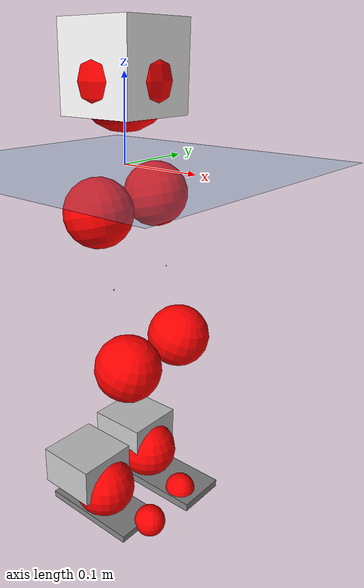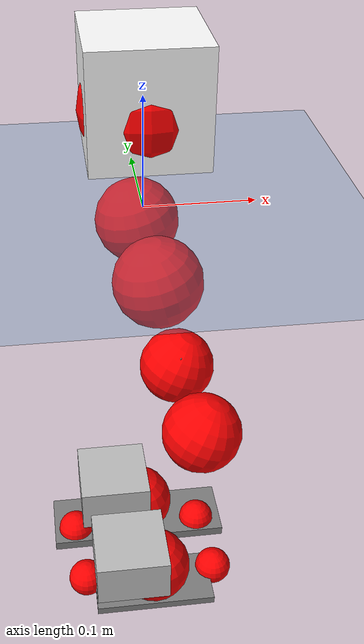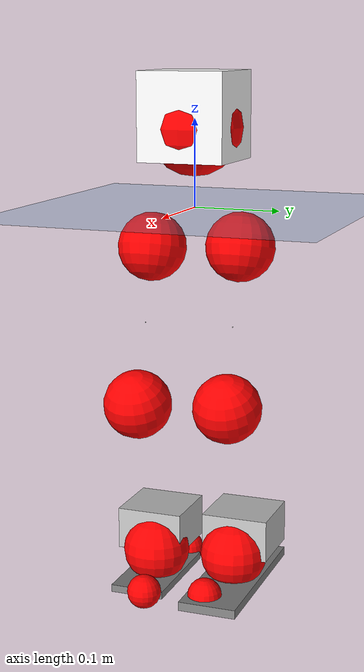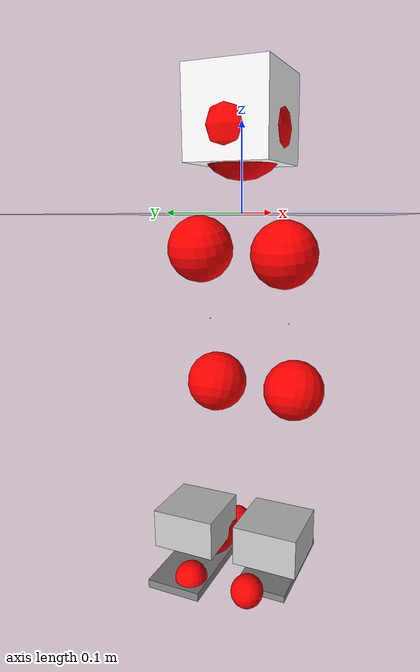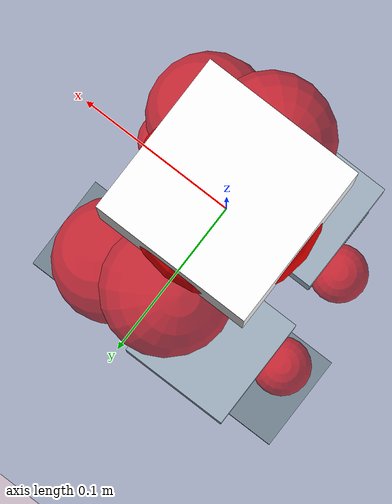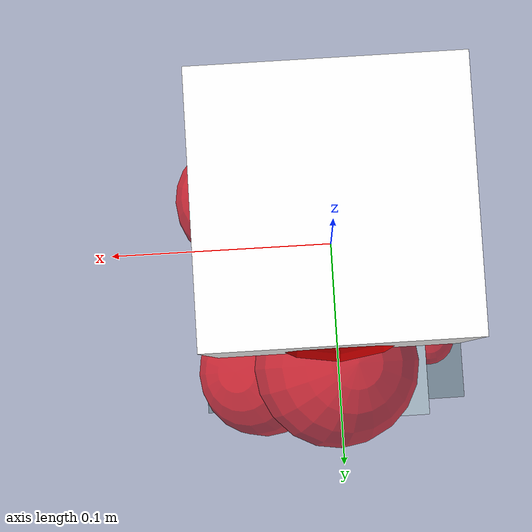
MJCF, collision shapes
<mujoco model="pi_12dof_release_v1">
  <compiler angle="radian" assetdir="assets" balanceinertia="true" inertiafromgeom="false"/>

  <option timestep="0.005" density="1.2" viscosity="2e-05"/>

  <size nkey="1"/>

  <visual>
    <quality shadowsize="8192"/>
    <map shadowclip="0.5"/>
  </visual>

  <default>
    <default class="/">
      <joint armature="0.01" damping="0.01" frictionloss="0.01"/>
      <geom contype="0" conaffinity="0" group="1" solref="-1000 -80"/>
      <site size="0.01 0.005 0.005" group="5"/>
      <general forcelimited="true" biastype="affine" gainprm="20" biasprm="0 -20 -0.5"/>
      <default class="foot">
        <geom size="0.0845 0.036 0.005" type="box" condim="6" group="4" priority="1" friction="0.9 0.2 0.2" solimp="0.015 1 0.005"/>
      </default>
      <default class="reward_collision_sphere">
        <geom group="5" rgba="1 0 0 1"/>
      </default>
    </default>
  </default>

  <asset>
    <texture type="skybox" colorspace="auto" name="//unnamed_texture_0" builtin="gradient" rgb1="0.95 0.95 0.95" rgb2="0.95 0.95 0.95" width="100" height="600"/>
    <texture type="2d" colorspace="auto" name="texplane" builtin="checker" rgb1="0.345 0.575 0.748" rgb2="0.345 0.575 0.748" markrgb="1 1 1" width="512" height="512"/>
    <material name="MatPlane" class="/" texture="texplane" texuniform="true" texrepeat="2 2" specular="0.9"/>
    <mesh name="baselink_1" class="/" file="baselink_1.STL"/>
    <mesh name="r_hip_pitch_link" class="/" file="r_hip_pitch_link.STL"/>
    <mesh name="r_hip_roll_link" class="/" file="r_hip_roll_link.STL"/>
    <mesh name="r_thigh_link" class="/" file="r_thigh_link.STL"/>
    <mesh name="r_calf_link" class="/" file="r_calf_link.STL"/>
    <mesh name="r_ankle_pitch_link" class="/" file="r_ankle_pitch_link.STL"/>
    <mesh name="r_ankle_roll_link" class="/" file="r_ankle_roll_link.STL"/>
    <mesh name="l_hip_pitch_link" class="/" file="l_hip_pitch_link.STL"/>
    <mesh name="l_hip_roll_link" class="/" file="l_hip_roll_link.STL"/>
    <mesh name="l_thigh_link" class="/" file="l_thigh_link.STL"/>
    <mesh name="l_calf_link" class="/" file="l_calf_link.STL"/>
    <mesh name="l_ankle_pitch_link" class="/" file="l_ankle_pitch_link.STL"/>
    <mesh name="l_ankle_roll_link" class="/" file="l_ankle_roll_link.STL"/>
  </asset>

  <worldbody>
    <geom name="floor" class="/" size="100 100 0.125" type="plane" group="0" material="MatPlane"/>
    <light name="toplight_shadow" class="/" pos="0 0 5" dir="0.0990148 0.0990148 -0.990148" type="directional" ambient="0.04 0.04 0.04" diffuse="0.55 0.55 0.55" specular="0.12 0.12 0.12"/>
    <light name="toplight_fill" class="/" pos="0 0 5" dir="0.0990148 0.0990148 -0.990148" type="directional" castshadow="false" ambient="0.04 0.04 0.04" diffuse="0.3 0.3 0.3" specular="0.08 0.08 0.08"/>
    <body name="trunk" pos="0.000509652 -0.000208492 -0.00111913" quat="1 0.0002093 -0.00031891 0.000254528">
      <inertial pos="0.00227752 0.000586374 0.0554834" quat="0.687192 0.00958089 0.0169823 0.726214" mass="2.18883" diaginertia="0.0140368 0.00078153 0.0156267"/>
      <joint name="//unnamed_joint_0" type="free"/>
      <geom name="//unnamed_geom_1" class="/" type="mesh" density="0" rgba="1 1 1 1" mesh="baselink_1"/>
      <geom name="//unnamed_geom_2" class="/" size="0.0498847 0.0498847 0.0498847" pos="0 0 0.104653" type="box" rgba="1 1 1 1"/>
      <geom name="//unnamed_geom_3" class="reward_collision_sphere" size="0.0548732" pos="0 0 0.0915717"/>
      <site name="imu" class="/" pos="0.0127814 -0.00680981 -0.00386836" size="0.00997694"/>
      <camera name="track" class="/" pos="0 -1.22836 0" quat="0.707107 0.707107 0 0" mode="trackcom"/>
      <camera name="ego_camera" class="/" pos="0.0803051 0 0.23547" quat="-0.5 -0.5 0.5 0.5"/>
      <body name="r_hip_pitch_link" pos="0.00353906 -0.0160286 -0.0442605" quat="0.992207 0.000240866 -0.124595 -0.00108197">
        <inertial pos="6.10001e-05 -0.0369305 0.000130254" quat="-0.0137398 0.711282 -0.0272201 0.702245" mass="0.375524" diaginertia="0.000156747 8.72644e-06 0.000331137"/>
        <joint name="r_hip_pitch_joint" class="/" pos="0 0 0" axis="-0.0139716 -0.999902 -3.69992e-05" range="-1.74279 1.28076" armature="0.00869273" damping="0.020284" frictionloss="0.00863418"/>
        <geom name="//unnamed_geom_4" class="/" type="mesh" density="0" rgba="0.75294 0.75294 0.75294 1" mesh="r_hip_pitch_link"/>
        <geom name="//unnamed_geom_5" class="/" size="0.000498847 0.000498847 0.000498847" type="box" rgba="0.75294 0.75294 0.75294 1"/>
        <body name="r_hip_roll_link" pos="0.00231086 -0.033988 -0.00185672" quat="1 0.00025408 -8.62346e-05 -0.000207261">
          <inertial pos="0.00138217 -0.00063075 -0.0808981" quat="0.698086 -0.0819612 -0.0897375 0.705624" mass="0.394224" diaginertia="0.000477665 2.43763e-05 0.000480779"/>
          <joint name="r_hip_roll_joint" class="/" pos="0 0 0" axis="-0.999922 0.0104741 -0.00686746" range="-0.0998716 0.54755" armature="0.00851633" damping="0.00135991" frictionloss="0.0103633"/>
          <geom name="//unnamed_geom_6" class="/" type="mesh" density="0" rgba="0.75294 0.75294 0.75294 1" mesh="r_hip_roll_link"/>
          <geom name="//unnamed_geom_7" class="/" size="0.000498847 0.000498847 0.000498847" type="box" rgba="0.75294 0.75294 0.75294 1"/>
          <geom name="//unnamed_geom_8" class="reward_collision_sphere" size="0.0399078"/>
          <body name="r_thigh_link" pos="0.000268533 -0.000104227 -0.0882903" quat="1 -6.27327e-05 -1.74066e-05 -7.8312e-06">
            <inertial pos="-0.00125255 -0.000288209 -0.0647715" quat="0.741446 0.670926 0.00460197 0.00973031" mass="0.109654" diaginertia="0.000170688 8.29557e-06 0.000209984"/>
            <joint name="r_thigh_joint" class="/" pos="0 0 0" axis="0.0034232 -0.00850102 -0.999958" stiffness="0.00431916" range="-0.249165 0.638267" armature="0.0100036" damping="0.00892555" frictionloss="0.010817"/>
            <geom name="//unnamed_geom_9" class="/" type="mesh" density="0" rgba="0.75294 0.75294 0.75294 1" mesh="r_thigh_link"/>
            <geom name="//unnamed_geom_10" class="/" size="0.000498847 0.000498847 0.000498847" type="box" rgba="0.75294 0.75294 0.75294 1"/>
            <body name="r_calf_link" pos="-0.00100296 -0.00134239 -0.0950686" quat="0.947657 0.000203015 0.319291 0.000317235">
              <inertial pos="-0.00109242 -0.00032338 -0.0914073" quat="0.999953 -0.00395173 0.00274881 0.00844451" mass="0.799575" diaginertia="0.00489747 0.000319914 0.000686451"/>
              <joint name="r_calf_joint" class="/" pos="0 0 0" axis="0.000344029 -0.999997 0.00237258" range="-1.65628 0.689699" armature="0.00932845" damping="0.0142943" frictionloss="0.00880165"/>
              <geom name="//unnamed_geom_11" class="/" type="mesh" density="0" rgba="0.75294 0.75294 0.75294 1" mesh="r_calf_link"/>
              <geom name="//unnamed_geom_12" class="/" size="0.000498847 0.000498847 0.000498847" type="box" rgba="0.75294 0.75294 0.75294 1"/>
              <geom name="//unnamed_geom_13" class="reward_collision_sphere" size="0.0399078"/>
              <body name="r_ankle_pitch_link" pos="-0.00108467 -0.00191792 -0.185485" quat="0.980137 0.000134685 -0.198321 8.40076e-05">
                <inertial pos="0.00490381 0.00386749 -0.000720743" quat="-0.000176344 0.707113 -0.00323148 0.707093" mass="0.177171" diaginertia="0.00043337 1.96382e-05 0.000470046"/>
                <joint name="r_ankle_pitch_joint" class="/" pos="0 0 0" axis="0.0133976 -0.999907 -0.00250677" range="-1.3501 0.544137" armature="0.00889528" damping="0.00965229" frictionloss="0.00998335"/>
                <geom name="//unnamed_geom_14" class="/" type="mesh" density="0" rgba="0.75294 0.75294 0.75294 1" mesh="r_ankle_pitch_link"/>
                <geom name="//unnamed_geom_15" class="/" size="0.0389101 0.0399078 0.0249424" type="box" rgba="0.75294 0.75294 0.75294 1"/>
                <body name="r_ankle_roll_link" pos="0.0804134 0.00478114 0.00150936" quat="1 0.000150667 -0.000171852 6.36965e-05">
                  <inertial pos="-0.0248005 0.000588189 -0.0203674" quat="0.55727 0.424748 0.434206 0.566131" mass="0.502379" diaginertia="0.00162976 8.94719e-05 0.00107672"/>
                  <joint name="r_ankle_roll_joint" class="/" pos="0 0 0" axis="-1 -8.25883e-05 0.000754824" range="-0.179651 0.207043" armature="0.0114079" damping="0.00919784" frictionloss="0.00973394"/>
                  <geom name="//unnamed_geom_16" class="/" type="mesh" density="0" rgba="0.75294 0.75294 0.75294 1" mesh="r_ankle_roll_link"/>
                  <geom name="//unnamed_geom_17" class="/" type="mesh" rgba="0.75294 0.75294 0.75294 1" mesh="r_ankle_roll_link"/>
                  <geom name="right_foot" class="foot" size="0.0648779 0.0322129 0.00434988" pos="-0.0546075 0 -0.0575594"/>
                  <geom name="//unnamed_geom_19" class="reward_collision_sphere" size="0.0399078" pos="-0.0535367 0 -0.0261634"/>
                  <geom name="//unnamed_geom_20" class="reward_collision_sphere" size="0.0199539" pos="0.016061 0.0122836 -0.0523267"/>
                  <geom name="//unnamed_geom_21" class="reward_collision_sphere" size="0.0199539" pos="-0.128488 0.0122836 -0.0523267"/>
                  <site name="right_foot" class="foot" pos="-0.0546075 0 -0.0575594" size="0.00997694"/>
                </body>
              </body>
            </body>
          </body>
        </body>
      </body>
      <body name="l_hip_pitch_link" pos="0.00179426 0.0171951 -0.0407619" quat="0.992313 0.000333782 -0.123755 0.000186503">
        <inertial pos="0.00366594 0.0320182 -0.000694764" quat="-0.0336735 0.705108 0.0224785 0.707943" mass="0.391957" diaginertia="0.000175359 8.98018e-06 0.000391358"/>
        <joint name="l_hip_pitch_joint" class="/" pos="0 0 0" axis="-0.00191407 0.999998 0.000634156" range="-1.22723 1.79966" armature="0.00904834" damping="0.0213683" frictionloss="0.00902735"/>
        <geom name="//unnamed_geom_22" class="/" type="mesh" density="0" rgba="0.75294 0.75294 0.75294 1" mesh="l_hip_pitch_link"/>
        <geom name="//unnamed_geom_23" class="/" size="0.000498847 0.000498847 0.000498847" type="box" rgba="0.75294 0.75294 0.75294 1"/>
        <body name="l_hip_roll_link" pos="-0.00201454 0.0379925 -1.75078e-05" quat="1 -0.00010941 0.000273619 -0.000131792">
          <inertial pos="-0.00229734 0.000217212 -0.0821132" quat="0.698329 -0.0758522 -0.0788151 0.707369" mass="0.384782" diaginertia="0.00046494 2.36434e-05 0.000506849"/>
          <joint name="l_hip_roll_joint" class="/" pos="0 0 0" axis="-0.999938 -0.00179818 -0.0110077" stiffness="0.0070674" range="-0.548376 0.14481" armature="0.0106763" damping="0" frictionloss="0.010363"/>
          <geom name="//unnamed_geom_24" class="/" type="mesh" density="0" rgba="0.75294 0.75294 0.75294 1" mesh="l_hip_roll_link"/>
          <geom name="//unnamed_geom_25" class="/" size="0.000498847 0.000498847 0.000498847" type="box" rgba="0.75294 0.75294 0.75294 1"/>
          <geom name="//unnamed_geom_26" class="reward_collision_sphere" size="0.0399078"/>
          <body name="l_thigh_link" pos="-0.00194745 -0.00148649 -0.0913434" quat="0.999999 0.000857239 -0.000712099 0.000589408">
            <inertial pos="0.000370044 -0.00227275 -0.0619709" quat="0.682355 0.730897 -0.00454447 0.0126482" mass="0.11133" diaginertia="0.000174518 8.31842e-06 0.000227335"/>
            <joint name="l_thigh_joint" class="/" pos="0 0 0" axis="-0.00828559 -0.0109079 -0.999906" range="-0.639181 0.329151" armature="0.0110956" damping="0.00936339" frictionloss="0.0107728"/>
            <geom name="//unnamed_geom_27" class="/" type="mesh" density="0" rgba="0.75294 0.75294 0.75294 1" mesh="l_thigh_link"/>
            <geom name="//unnamed_geom_28" class="/" size="0.000498847 0.000498847 0.000498847" type="box" rgba="0.75294 0.75294 0.75294 1"/>
            <body name="l_calf_link" pos="-0.00151183 0.00102453 -0.0929822" quat="0.947623 -8.59827e-05 0.319391 2.88899e-05">
              <inertial pos="0.00168938 0.0023834 -0.0918573" quat="0.999937 -0.00622174 0.00856724 0.00376499" mass="0.784651" diaginertia="0.00477028 0.000296706 0.000666218"/>
              <joint name="l_calf_joint" class="/" pos="0 0 0" axis="0.00831889 0.999959 0.00343875" range="-0.597869 1.71884" armature="0.0103382" damping="0.01049" frictionloss="0.0104147"/>
              <geom name="//unnamed_geom_29" class="/" type="mesh" density="0" rgba="0.75294 0.75294 0.75294 1" mesh="l_calf_link"/>
              <geom name="//unnamed_geom_30" class="/" size="0.000498847 0.000498847 0.000498847" type="box" rgba="0.75294 0.75294 0.75294 1"/>
              <geom name="//unnamed_geom_31" class="reward_collision_sphere" size="0.0399078"/>
              <body name="l_ankle_pitch_link" pos="-0.000493774 -0.00262645 -0.18477" quat="0.980065 1.65459e-06 -0.198679 4.04318e-05">
                <inertial pos="0.00614187 -0.00332469 0.00139701" quat="-0.00209352 0.707012 0.00231887 0.707194" mass="0.186264" diaginertia="0.000451686 1.99632e-05 0.000489746"/>
                <joint name="l_ankle_pitch_joint" class="/" pos="0 0 0" axis="0.00266386 0.999995 0.00151425" range="-0.498678 1.2971" armature="0.00982691" damping="0.0013707" frictionloss="0.00826469"/>
                <geom name="//unnamed_geom_32" class="/" type="mesh" density="0" rgba="0.75294 0.75294 0.75294 1" mesh="l_ankle_pitch_link"/>
                <geom name="//unnamed_geom_33" class="/" size="0.0389101 0.0399078 0.0249424" type="box" rgba="0.75294 0.75294 0.75294 1"/>
                <body name="l_ankle_roll_link" pos="0.0813088 -0.00351276 0.00229613" quat="0.999999 0.000560894 0.000470753 0.000769848">
                  <inertial pos="-0.0288449 -0.00097762 -0.0193095" quat="0.558868 0.430743 0.434633 0.559662" mass="0.523517" diaginertia="0.00155773 9.03478e-05 0.00108164"/>
                  <joint name="l_ankle_roll_joint" class="/" pos="0 0 0" axis="-0.999998 -0.000313041 0.00218255" range="-0.150431 0.156545" armature="0.00863247" damping="0.0114741" frictionloss="0.0109903"/>
                  <geom name="//unnamed_geom_34" class="/" type="mesh" density="0" rgba="0.75294 0.75294 0.75294 1" mesh="l_ankle_roll_link"/>
                  <geom name="//unnamed_geom_35" class="/" type="mesh" rgba="0.75294 0.75294 0.75294 1" mesh="l_ankle_roll_link"/>
                  <geom name="left_foot" class="foot" size="0.0990027 0.0341444 0.00524062" pos="-0.0546075 0 -0.0575594"/>
                  <geom name="//unnamed_geom_37" class="reward_collision_sphere" size="0.0399078" pos="-0.0535367 0 -0.0261634"/>
                  <geom name="//unnamed_geom_38" class="reward_collision_sphere" size="0.0199539" pos="0.016061 -0.0122836 -0.0523267"/>
                  <geom name="//unnamed_geom_39" class="reward_collision_sphere" size="0.0199539" pos="-0.128488 -0.0122836 -0.0523267"/>
                  <site name="left_foot" class="foot" pos="-0.0546075 0 -0.0575594" size="0.00997694"/>
                </body>
              </body>
            </body>
          </body>
        </body>
      </body>
    </body>
  </worldbody>

  <contact>
    <pair class="/" geom1="floor" geom2="right_foot" name="//unnamed_contact_1"/>
    <pair class="/" geom1="floor" geom2="left_foot" name="//unnamed_contact_0"/>
  </contact>

  <actuator>
    <general name="r_hip_pitch_joint" class="/" joint="r_hip_pitch_joint" forcerange="-23.1312 23.1312" gainprm="19.4088" biasprm="0 -19.4088 -0.490817"/>
    <general name="r_hip_roll_joint" class="/" joint="r_hip_roll_joint" forcerange="-21.123 21.123" gainprm="19.4088" biasprm="0 -19.4088 -0.490817"/>
    <general name="r_thigh_joint" class="/" joint="r_thigh_joint" forcerange="-21.4916 21.4916" gainprm="19.4088" biasprm="0 -19.4088 -0.490817"/>
    <general name="r_calf_joint" class="/" joint="r_calf_joint" forcerange="-21.6679 21.6679" gainprm="19.4088" biasprm="0 -19.4088 -0.490817"/>
    <general name="r_ankle_pitch_joint" class="/" joint="r_ankle_pitch_joint" forcerange="-20.958 20.958" gainprm="19.4088" biasprm="0 -19.4088 -0.490817"/>
    <general name="r_ankle_roll_joint" class="/" joint="r_ankle_roll_joint" forcerange="-20.7711 20.7711" gainprm="19.4088" biasprm="0 -19.4088 -0.490817"/>
    <general name="l_hip_pitch_joint" class="/" joint="l_hip_pitch_joint" forcerange="-19.8354 19.8354" gainprm="19.4088" biasprm="0 -19.4088 -0.490817"/>
    <general name="l_hip_roll_joint" class="/" joint="l_hip_roll_joint" forcerange="-19.4311 19.4311" gainprm="19.4088" biasprm="0 -19.4088 -0.490817"/>
    <general name="l_thigh_joint" class="/" joint="l_thigh_joint" forcerange="-19.0617 19.0617" gainprm="19.4088" biasprm="0 -19.4088 -0.490817"/>
    <general name="l_calf_joint" class="/" joint="l_calf_joint" forcerange="-19.639 19.639" gainprm="19.4088" biasprm="0 -19.4088 -0.490817"/>
    <general name="l_ankle_pitch_joint" class="/" joint="l_ankle_pitch_joint" forcerange="-22.868 22.868" gainprm="19.4088" biasprm="0 -19.4088 -0.490817"/>
    <general name="l_ankle_roll_joint" class="/" joint="l_ankle_roll_joint" forcerange="-21.4366 21.4366" gainprm="19.4088" biasprm="0 -19.4088 -0.490817"/>
  </actuator>

  <sensor>
    <gyro site="imu" name="imu_angular_velocity"/>
    <velocimeter site="imu" name="imu_linear_velocity"/>
    <framelinvel objtype="site" objname="left_foot" name="left_foot_global_linear_velocity"/>
    <framelinvel objtype="site" objname="right_foot" name="right_foot_global_linear_velocity"/>
  </sensor>

  <keyframe>
    <key name="home" qpos="0 0 0.291 1 0 0 0 0.4 0 0 -0.8 0.4 0 -0.4 0 0 0.8 -0.4 0"/>
  </keyframe>
</mujoco>
